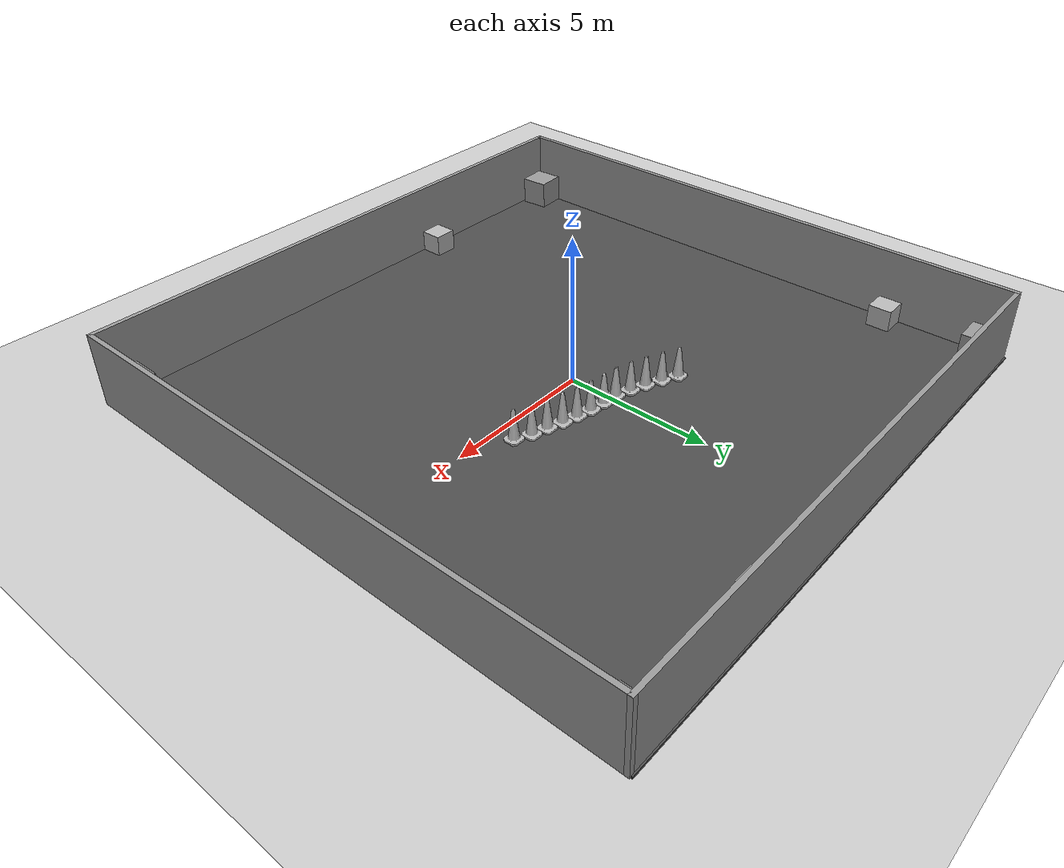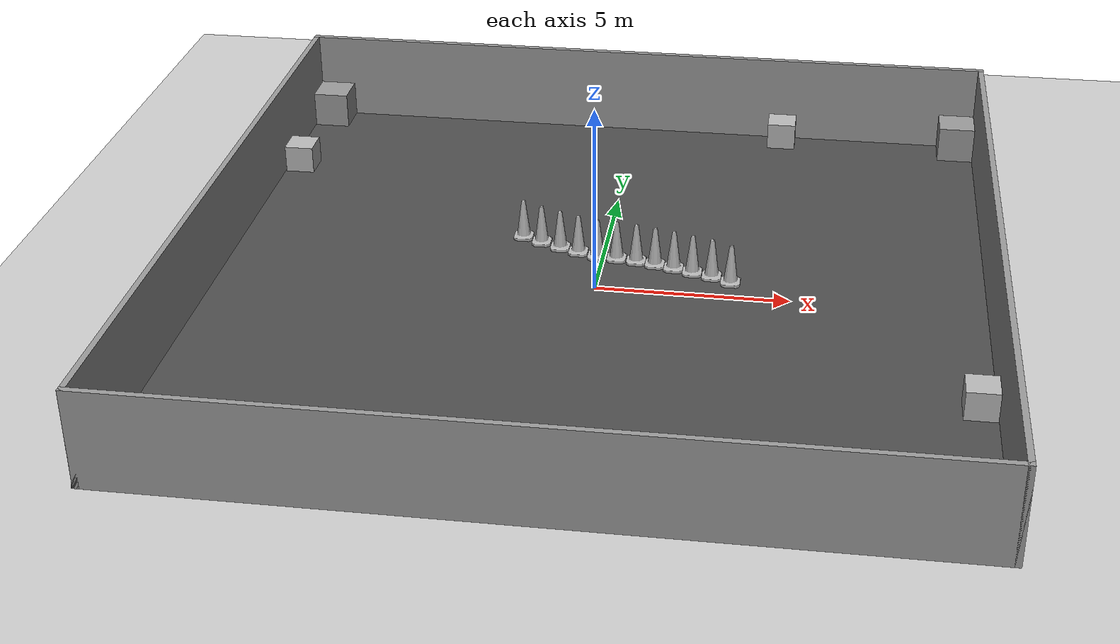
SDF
<sdf version="1.7">
 <world name="default">
  <light name="sun" type="directional">
   <pose>0 0 10 0 -0 0</pose>
   <diffuse>0.8 0.8 0.8 1</diffuse>
   <specular>0.2 0.2 0.2 1</specular>
   <attenuation>
    <range>1000</range>
    <constant>0.9</constant>
    <linear>0.01</linear>
    <quadratic>0.001</quadratic>
   </attenuation>
   <direction>-0.5 0.1 -0.9</direction>
   <spot><inner_angle>0</inner_angle><outer_angle>0</outer_angle><falloff>0</falloff></spot>
  </light>
  <model name="ground_plane">
   <static>1</static>
   <link name="link">
    <collision name="collision">
     <geometry><plane><normal>0 0 1</normal><size>100 100</size></plane></geometry>
     <surface><friction><ode><mu>100</mu><mu2>50</mu2></ode></friction></surface>
    </collision>
    <visual name="visual">
     <cast_shadows>0</cast_shadows>
     <geometry><plane><normal>0 0 1</normal><size>100 100</size></plane></geometry>
     <material>
      <script><uri>file://media/materials/scripts/gazebo.material</uri><name>Gazebo/Grey</name></script>
     </material>
    </visual>
   </link>
  </model>
  <gravity>0 0 -9.8</gravity>
  <magnetic_field>6e-06 2.3e-05 -4.2e-05</magnetic_field>
  <atmosphere type="adiabatic"/>
  <physics type="ode">
   <max_step_size>0.001</max_step_size>
   <real_time_factor>1</real_time_factor>
   <real_time_update_rate>1000</real_time_update_rate>
  </physics>
  <scene><ambient>0.4 0.4 0.4 1</ambient><background>0.7 0.7 0.7 1</background><shadows>1</shadows></scene>
  <audio><device>default</device></audio>
  <spherical_coordinates>
   <surface_model>EARTH_WGS84</surface_model>
   <latitude_deg>0</latitude_deg>
   <longitude_deg>0</longitude_deg>
   <elevation>0</elevation>
   <heading_deg>0</heading_deg>
  </spherical_coordinates>
  <model name="asphalt_plane">
   <static>1</static>
   <link name="link">
    <collision name="collision"><geometry><box><size>20 20 0.1</size></box></geometry></collision>
    <visual name="visual">
     <cast_shadows>0</cast_shadows>
     <geometry><box><size>20 20 0.1</size></box></geometry>
     <material>
      <script>
       <uri>model://asphalt_plane/materials/scripts</uri>
       <uri>model://asphalt_plane/materials/textures</uri>
       <name>vrc/asphalt</name>
      </script>
     </material>
    </visual>
   </link>
   <pose>0.027118 -0.028406 0 0 -0 0</pose>
  </model>
  <model name="4Walls">
   <pose>0.075 -0.075 0 0 -0 0</pose>
   <link name="Wall_17">
    <collision name="Wall_17_Collision">
     <geometry><box><size>20 0.15 2.5</size></box></geometry>
     <pose>0 0 1.25 0 -0 0</pose>
    </collision>
    <visual name="Wall_17_Visual">
     <pose>0 0 1.25 0 -0 0</pose>
     <geometry><box><size>20 0.15 2.5</size></box></geometry>
     <material>
      <script><uri>file://media/materials/scripts/gazebo.material</uri><name>Gazebo/Grey</name></script>
      <ambient>1 1 1 1</ambient>
     </material>
     <meta><layer>0</layer></meta>
    </visual>
    <pose>0 -9.925 0 0 -0 0</pose>
   </link>
   <link name="Wall_19">
    <collision name="Wall_19_Collision">
     <geometry><box><size>20 0.15 2.5</size></box></geometry>
     <pose>0 0 1.25 0 -0 0</pose>
    </collision>
    <visual name="Wall_19_Visual">
     <pose>0 0 1.25 0 -0 0</pose>
     <geometry><box><size>20 0.15 2.5</size></box></geometry>
     <material>
      <script><uri>file://media/materials/scripts/gazebo.material</uri><name>Gazebo/Grey</name></script>
      <ambient>1 1 1 1</ambient>
     </material>
     <meta><layer>0</layer></meta>
    </visual>
    <pose>9.925 -0 0 0 -0 1.5708</pose>
   </link>
   <link name="Wall_21">
    <collision name="Wall_21_Collision">
     <geometry><box><size>20 0.15 2.5</size></box></geometry>
     <pose>0 0 1.25 0 -0 0</pose>
    </collision>
    <visual name="Wall_21_Visual">
     <pose>0 0 1.25 0 -0 0</pose>
     <geometry><box><size>20 0.15 2.5</size></box></geometry>
     <material>
      <script><uri>file://media/materials/scripts/gazebo.material</uri><name>Gazebo/Grey</name></script>
      <ambient>1 1 1 1</ambient>
     </material>
     <meta><layer>0</layer></meta>
    </visual>
    <pose>0 9.925 0 0 -0 3.14159</pose>
   </link>
   <link name="Wall_22">
    <collision name="Wall_22_Collision">
     <geometry><box><size>20 0.15 2.5</size></box></geometry>
     <pose>0 0 1.25 0 -0 0</pose>
    </collision>
    <visual name="Wall_22_Visual">
     <pose>0 0 1.25 0 -0 0</pose>
     <geometry><box><size>20 0.15 2.5</size></box></geometry>
     <material>
      <script><uri>file://media/materials/scripts/gazebo.material</uri><name>Gazebo/Grey</name></script>
      <ambient>1 1 1 1</ambient>
     </material>
     <meta><layer>0</layer></meta>
    </visual>
    <pose>-9.925 -0 0 0 -0 -1.5708</pose>
   </link>
   <static>1</static>
  </model>
  <model name="unit_box">
   <pose>9.4068 -9.39921 0.55 0 -0 3.2e-05</pose>
   <link name="link">
    <inertial>
     <mass>1</mass>
     <inertia>
      <ixx>0.166667</ixx>
      <ixy>0</ixy>
      <ixz>0</ixz>
      <iyy>0.166667</iyy>
      <iyz>0</iyz>
      <izz>0.166667</izz>
     </inertia>
    </inertial>
    <collision name="collision"><geometry><box><size>1 1 1</size></box></geometry></collision>
    <visual name="visual">
     <geometry><box><size>1 1 1</size></box></geometry>
     <material>
      <script><name>Gazebo/Grey</name><uri>file://media/materials/scripts/gazebo.material</uri></script>
     </material>
    </visual>
   </link>
  </model>
  <model name="unit_box_clone">
   <pose>9.42472 9.27477 0.55 0 -0 3.9e-05</pose>
   <link name="link">
    <inertial>
     <mass>1</mass>
     <inertia>
      <ixx>0.166667</ixx>
      <ixy>0</ixy>
      <ixz>0</ixz>
      <iyy>0.166667</iyy>
      <iyz>0</iyz>
      <izz>0.166667</izz>
     </inertia>
    </inertial>
    <collision name="collision"><geometry><box><size>1 1 1</size></box></geometry></collision>
    <visual name="visual">
     <geometry><box><size>1 1 1</size></box></geometry>
     <material>
      <script><name>Gazebo/Grey</name><uri>file://media/materials/scripts/gazebo.material</uri></script>
     </material>
    </visual>
   </link>
  </model>
  <model name="unit_box_clone_clone">
   <pose>-9.26193 9.27501 0.55 0 -0 1.6e-05</pose>
   <link name="link">
    <inertial>
     <mass>1</mass>
     <inertia>
      <ixx>0.166667</ixx>
      <ixy>0</ixy>
      <ixz>0</ixz>
      <iyy>0.166667</iyy>
      <iyz>0</iyz>
      <izz>0.166667</izz>
     </inertia>
    </inertial>
    <collision name="collision"><geometry><box><size>1 1 1</size></box></geometry></collision>
    <visual name="visual">
     <geometry><box><size>1 1 1</size></box></geometry>
     <material>
      <script><name>Gazebo/Grey</name><uri>file://media/materials/scripts/gazebo.material</uri></script>
     </material>
    </visual>
   </link>
  </model>
  <model name="unit_box_clone_clone_clone">
   <pose>-9.2339 -9.39314 0.549997 9e-06 -6e-06 0.065944</pose>
   <link name="link">
    <inertial>
     <mass>1</mass>
     <inertia>
      <ixx>0.166667</ixx>
      <ixy>0</ixy>
      <ixz>0</ixz>
      <iyy>0.166667</iyy>
      <iyz>0</iyz>
      <izz>0.166667</izz>
     </inertia>
    </inertial>
    <collision name="collision"><geometry><box><size>1 1 1</size></box></geometry></collision>
    <visual name="visual">
     <geometry><box><size>1 1 1</size></box></geometry>
     <material>
      <script><name>Gazebo/Grey</name><uri>file://media/materials/scripts/gazebo.material</uri></script>
     </material>
    </visual>
   </link>
  </model>
  <model name="number1">
   <pose>-3.44359 -9.53926 0.4 0 -0 0</pose>
   <static>1</static>
   <link name="link">
    <visual name="visual">
     <geometry><mesh><uri>model://number1/meshes/number.dae</uri></mesh></geometry>
     <material>
      <script>
       <uri>model://number1/materials/scripts</uri>
       <uri>model://number1/materials/textures</uri>
       <name>Number/One</name>
      </script>
     </material>
    </visual>
   </link>
  </model>
  <model name="number2">
   <pose>-9.34806 5.92857 0.4 0 -0 0</pose>
   <static>1</static>
   <link name="link">
    <visual name="visual">
     <geometry><mesh><uri>model://number1/meshes/number.dae</uri></mesh></geometry>
     <material>
      <script>
       <uri>model://number2/materials/scripts</uri>
       <uri>model://number2/materials/textures</uri>
       <name>Number/Two</name>
      </script>
     </material>
    </visual>
   </link>
  </model>
  <model name="number3">
   <pose>4.34527 9.36089 0.4 0 -0 0</pose>
   <static>1</static>
   <link name="link">
    <visual name="visual">
     <geometry><mesh><uri>model://number1/meshes/number.dae</uri></mesh></geometry>
     <material>
      <script>
       <uri>model://number3/materials/scripts</uri>
       <uri>model://number3/materials/textures</uri>
       <name>Number/Three</name>
      </script>
     </material>
    </visual>
   </link>
  </model>
  <model name="number4">
   <pose>9.51457 -4.51109 0.4 0 -0 0</pose>
   <static>1</static>
   <link name="link">
    <visual name="visual">
     <geometry><mesh><uri>model://number1/meshes/number.dae</uri></mesh></geometry>
     <material>
      <script>
       <uri>model://number4/materials/scripts</uri>
       <uri>model://number4/materials/textures</uri>
       <name>Number/Four</name>
      </script>
     </material>
    </visual>
   </link>
  </model>
  <model name="Construction Cone">
   <link name="link">
    <collision name="collision">
     <geometry>
      <mesh><scale>10 10 10</scale><uri>model://construction_cone/meshes/construction_cone.dae</uri></mesh>
     </geometry>
    </collision>
    <visual name="visual">
     <geometry>
      <mesh><scale>10 10 10</scale><uri>model://construction_cone/meshes/construction_cone.dae</uri></mesh>
     </geometry>
    </visual>
    <inertial>
     <inertia><ixx>1</ixx><ixy>0</ixy><ixz>0</ixz><iyy>1</iyy><iyz>0</iyz><izz>1</izz></inertia>
     <mass>1</mass>
    </inertial>
   </link>
   <pose>3.44074 0.667633 0.049998 0 -2e-06 -0.004192</pose>
  </model>
  <model name="Construction Cone_0">
   <link name="link">
    <collision name="collision">
     <geometry>
      <mesh><scale>10 10 10</scale><uri>model://construction_cone/meshes/construction_cone.dae</uri></mesh>
     </geometry>
    </collision>
    <visual name="visual">
     <geometry>
      <mesh><scale>10 10 10</scale><uri>model://construction_cone/meshes/construction_cone.dae</uri></mesh>
     </geometry>
    </visual>
    <inertial>
     <inertia><ixx>1</ixx><ixy>0</ixy><ixz>0</ixz><iyy>1</iyy><iyz>0</iyz><izz>1</izz></inertia>
     <mass>1</mass>
    </inertial>
   </link>
   <pose>2.93645 0.915504 0.049998 5e-06 2e-06 -0.001119</pose>
  </model>
  <model name="Construction Cone_1">
   <link name="link">
    <collision name="collision">
     <geometry>
      <mesh><scale>10 10 10</scale><uri>model://construction_cone/meshes/construction_cone.dae</uri></mesh>
     </geometry>
    </collision>
    <visual name="visual">
     <geometry>
      <mesh><scale>10 10 10</scale><uri>model://construction_cone/meshes/construction_cone.dae</uri></mesh>
     </geometry>
    </visual>
    <inertial>
     <inertia><ixx>1</ixx><ixy>0</ixy><ixz>0</ixz><iyy>1</iyy><iyz>0</iyz><izz>1</izz></inertia>
     <mass>1</mass>
    </inertial>
   </link>
   <pose>2.41927 1.06146 0.049992 3e-06 -3e-06 0.000615</pose>
  </model>
  <model name="Construction Cone_2">
   <link name="link">
    <collision name="collision">
     <geometry>
      <mesh><scale>10 10 10</scale><uri>model://construction_cone/meshes/construction_cone.dae</uri></mesh>
     </geometry>
    </collision>
    <visual name="visual">
     <geometry>
      <mesh><scale>10 10 10</scale><uri>model://construction_cone/meshes/construction_cone.dae</uri></mesh>
     </geometry>
    </visual>
    <inertial>
     <inertia><ixx>1</ixx><ixy>0</ixy><ixz>0</ixz><iyy>1</iyy><iyz>0</iyz><izz>1</izz></inertia>
     <mass>1</mass>
    </inertial>
   </link>
   <pose>1.91621 1.22575 0.05 0 1e-06 -0.000371</pose>
  </model>
  <model name="Construction Cone_3">
   <link name="link">
    <collision name="collision">
     <geometry>
      <mesh><scale>10 10 10</scale><uri>model://construction_cone/meshes/construction_cone.dae</uri></mesh>
     </geometry>
    </collision>
    <visual name="visual">
     <geometry>
      <mesh><scale>10 10 10</scale><uri>model://construction_cone/meshes/construction_cone.dae</uri></mesh>
     </geometry>
    </visual>
    <inertial>
     <inertia><ixx>1</ixx><ixy>0</ixy><ixz>0</ixz><iyy>1</iyy><iyz>0</iyz><izz>1</izz></inertia>
     <mass>1</mass>
    </inertial>
   </link>
   <pose>1.41249 1.3585 0.05 0 -2e-06 -0.014741</pose>
  </model>
  <model name="Construction Cone_4">
   <link name="link">
    <collision name="collision">
     <geometry>
      <mesh><scale>10 10 10</scale><uri>model://construction_cone/meshes/construction_cone.dae</uri></mesh>
     </geometry>
    </collision>
    <visual name="visual">
     <geometry>
      <mesh><scale>10 10 10</scale><uri>model://construction_cone/meshes/construction_cone.dae</uri></mesh>
     </geometry>
    </visual>
    <inertial>
     <inertia><ixx>1</ixx><ixy>0</ixy><ixz>0</ixz><iyy>1</iyy><iyz>0</iyz><izz>1</izz></inertia>
     <mass>1</mass>
    </inertial>
   </link>
   <pose>0.906406 1.47505 0.05 0 -0 0.002556</pose>
  </model>
  <model name="Construction Cone_5">
   <link name="link">
    <collision name="collision">
     <geometry>
      <mesh><scale>10 10 10</scale><uri>model://construction_cone/meshes/construction_cone.dae</uri></mesh>
     </geometry>
    </collision>
    <visual name="visual">
     <geometry>
      <mesh><scale>10 10 10</scale><uri>model://construction_cone/meshes/construction_cone.dae</uri></mesh>
     </geometry>
    </visual>
    <inertial>
     <inertia><ixx>1</ixx><ixy>0</ixy><ixz>0</ixz><iyy>1</iyy><iyz>0</iyz><izz>1</izz></inertia>
     <mass>1</mass>
    </inertial>
   </link>
   <pose>0.377529 1.55032 0.05 -2e-06 -0 -0.000256</pose>
  </model>
  <model name="Construction Cone_6">
   <link name="link">
    <collision name="collision">
     <geometry>
      <mesh><scale>10 10 10</scale><uri>model://construction_cone/meshes/construction_cone.dae</uri></mesh>
     </geometry>
    </collision>
    <visual name="visual">
     <geometry>
      <mesh><scale>10 10 10</scale><uri>model://construction_cone/meshes/construction_cone.dae</uri></mesh>
     </geometry>
    </visual>
    <inertial>
     <inertia><ixx>1</ixx><ixy>0</ixy><ixz>0</ixz><iyy>1</iyy><iyz>0</iyz><izz>1</izz></inertia>
     <mass>1</mass>
    </inertial>
   </link>
   <pose>-0.141692 1.60243 0.05 2e-06 -0 0</pose>
  </model>
  <model name="Construction Cone_7">
   <link name="link">
    <collision name="collision">
     <geometry>
      <mesh><scale>10 10 10</scale><uri>model://construction_cone/meshes/construction_cone.dae</uri></mesh>
     </geometry>
    </collision>
    <visual name="visual">
     <geometry>
      <mesh><scale>10 10 10</scale><uri>model://construction_cone/meshes/construction_cone.dae</uri></mesh>
     </geometry>
    </visual>
    <inertial>
     <inertia><ixx>1</ixx><ixy>0</ixy><ixz>0</ixz><iyy>1</iyy><iyz>0</iyz><izz>1</izz></inertia>
     <mass>1</mass>
    </inertial>
   </link>
   <pose>-0.669365 1.77178 0.05 -1e-06 -0 -0.000256</pose>
  </model>
  <model name="Construction Cone_8">
   <link name="link">
    <collision name="collision">
     <geometry>
      <mesh><scale>10 10 10</scale><uri>model://construction_cone/meshes/construction_cone.dae</uri></mesh>
     </geometry>
    </collision>
    <visual name="visual">
     <geometry>
      <mesh><scale>10 10 10</scale><uri>model://construction_cone/meshes/construction_cone.dae</uri></mesh>
     </geometry>
    </visual>
    <inertial>
     <inertia><ixx>1</ixx><ixy>0</ixy><ixz>0</ixz><iyy>1</iyy><iyz>0</iyz><izz>1</izz></inertia>
     <mass>1</mass>
    </inertial>
   </link>
   <pose>-1.18531 1.96113 0.049991 0 -1e-06 0</pose>
  </model>
  <model name="Construction Cone_9">
   <link name="link">
    <collision name="collision">
     <geometry>
      <mesh><scale>10 10 10</scale><uri>model://construction_cone/meshes/construction_cone.dae</uri></mesh>
     </geometry>
    </collision>
    <visual name="visual">
     <geometry>
      <mesh><scale>10 10 10</scale><uri>model://construction_cone/meshes/construction_cone.dae</uri></mesh>
     </geometry>
    </visual>
    <inertial>
     <inertia><ixx>1</ixx><ixy>0</ixy><ixz>0</ixz><iyy>1</iyy><iyz>0</iyz><izz>1</izz></inertia>
     <mass>1</mass>
    </inertial>
   </link>
   <pose>-1.7204 2.19421 0.05 0 2e-06 0</pose>
  </model>
  <model name="Construction Cone_10">
   <link name="link">
    <collision name="collision">
     <geometry>
      <mesh><scale>10 10 10</scale><uri>model://construction_cone/meshes/construction_cone.dae</uri></mesh>
     </geometry>
    </collision>
    <visual name="visual">
     <geometry>
      <mesh><scale>10 10 10</scale><uri>model://construction_cone/meshes/construction_cone.dae</uri></mesh>
     </geometry>
    </visual>
    <inertial>
     <inertia><ixx>1</ixx><ixy>0</ixy><ixz>0</ixz><iyy>1</iyy><iyz>0</iyz><izz>1</izz></inertia>
     <mass>1</mass>
    </inertial>
   </link>
   <pose>-2.25143 2.44752 0.05 -1e-06 -0 -0</pose>
  </model>
 </world>
</sdf>
